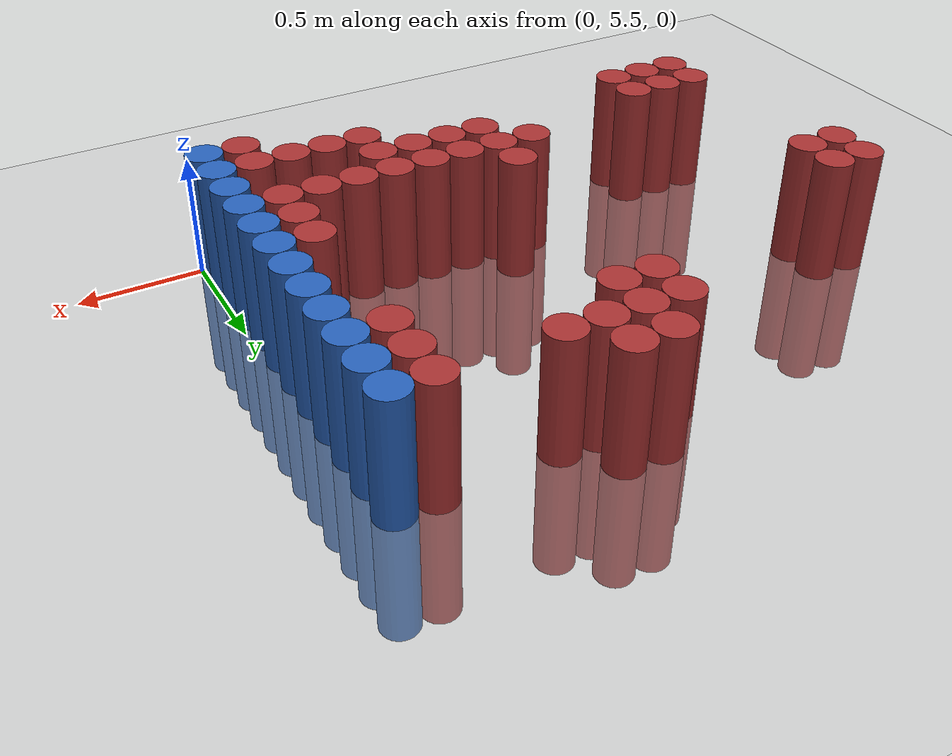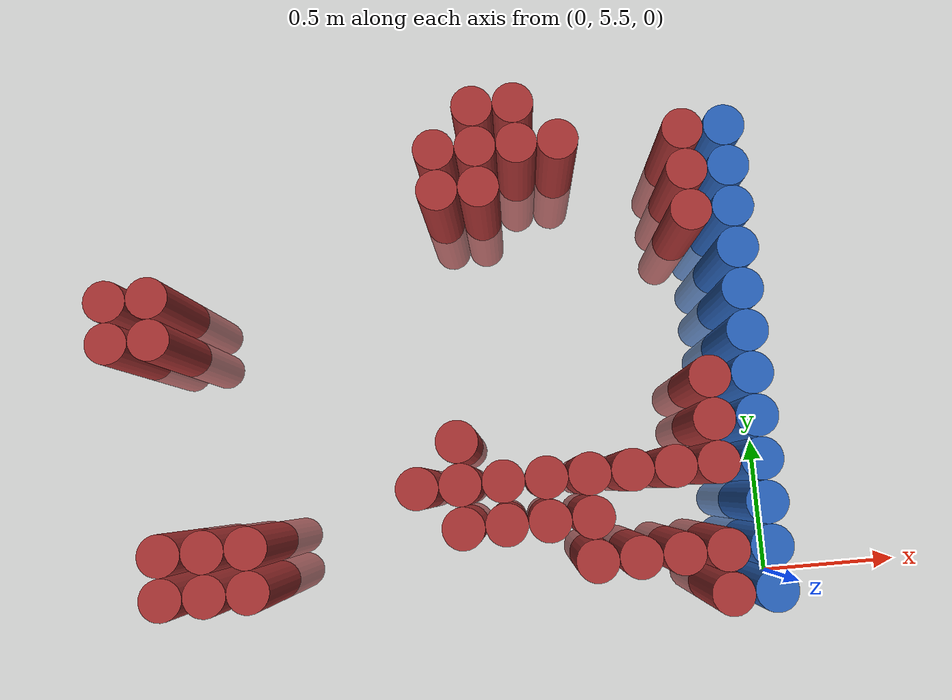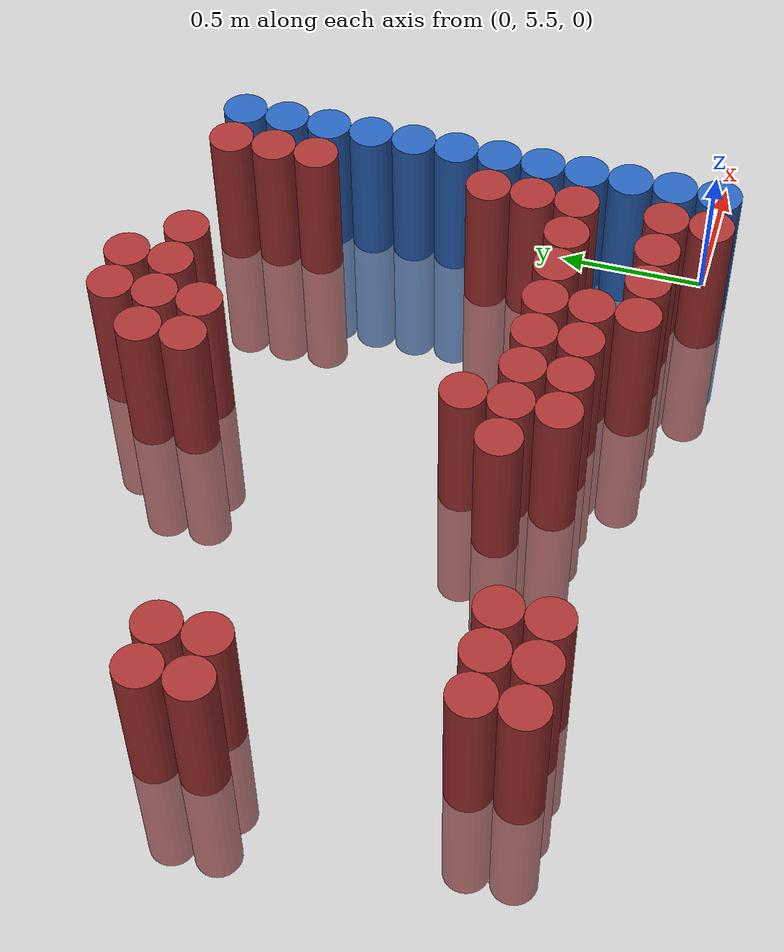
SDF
<sdf version="1.6">
 <world name="world_247">
  <model name="ground_plane">
   <static>1</static>
   <link name="link">
    <collision name="collision">
     <geometry><plane><normal>0 0 1</normal><size>100 100</size></plane></geometry>
     <surface><friction><ode><mu>100</mu><mu2>50</mu2></ode></friction></surface>
    </collision>
    <visual name="visual">
     <cast_shadows>0</cast_shadows>
     <geometry><plane><normal>0 0 1</normal><size>100 100</size></plane></geometry>
     <material>
      <script><uri>file://media/materials/scripts/gazebo.material</uri><name>Gazebo/Grey</name></script>
     </material>
    </visual>
   </link>
  </model>
  <model name="unit_cylinder_158">
   <static>1</static>
   <pose>-2.325000 6.525000 0.000000 0.000000 0.000000 0.000000</pose>
   <link name="link">
    <inertial>
     <mass>1</mass>
     <inertia><ixx>0.145833</ixx><ixy>0</ixy><ixz>0</ixz><iyy>0.145833</iyy><iyz>0</iyz><izz>0.125</izz></inertia>
    </inertial>
    <collision name="collision">
     <geometry><cylinder><radius>0.075000</radius><length>1</length></cylinder></geometry>
    </collision>
    <visual name="visual">
     <geometry><cylinder><radius>0.075000</radius><length>1</length></cylinder></geometry>
     <material>
      <ambient>0.648000 0.192000 0.192000 1</ambient>
      <diffuse>0.648000 0.192000 0.192000 1</diffuse>
     </material>
     <material>
      <script><name>Gazebo/Grey</name><uri>file://media/materials/scripts/gazebo.material</uri></script>
     </material>
    </visual>
   </link>
  </model>
  <model name="unit_cylinder_159">
   <static>1</static>
   <pose>-2.325000 6.675000 0.000000 0.000000 0.000000 0.000000</pose>
   <link name="link">
    <inertial>
     <mass>1</mass>
     <inertia><ixx>0.145833</ixx><ixy>0</ixy><ixz>0</ixz><iyy>0.145833</iyy><iyz>0</iyz><izz>0.125</izz></inertia>
    </inertial>
    <collision name="collision">
     <geometry><cylinder><radius>0.075000</radius><length>1</length></cylinder></geometry>
    </collision>
    <visual name="visual">
     <geometry><cylinder><radius>0.075000</radius><length>1</length></cylinder></geometry>
     <material>
      <ambient>0.648000 0.192000 0.192000 1</ambient>
      <diffuse>0.648000 0.192000 0.192000 1</diffuse>
     </material>
     <material>
      <script><name>Gazebo/Grey</name><uri>file://media/materials/scripts/gazebo.material</uri></script>
     </material>
    </visual>
   </link>
  </model>
  <model name="unit_cylinder_162">
   <static>1</static>
   <pose>-2.175000 5.625000 0.000000 0.000000 0.000000 0.000000</pose>
   <link name="link">
    <inertial>
     <mass>1</mass>
     <inertia><ixx>0.145833</ixx><ixy>0</ixy><ixz>0</ixz><iyy>0.145833</iyy><iyz>0</iyz><izz>0.125</izz></inertia>
    </inertial>
    <collision name="collision">
     <geometry><cylinder><radius>0.075000</radius><length>1</length></cylinder></geometry>
    </collision>
    <visual name="visual">
     <geometry><cylinder><radius>0.075000</radius><length>1</length></cylinder></geometry>
     <material>
      <ambient>0.648000 0.192000 0.192000 1</ambient>
      <diffuse>0.648000 0.192000 0.192000 1</diffuse>
     </material>
     <material>
      <script><name>Gazebo/Grey</name><uri>file://media/materials/scripts/gazebo.material</uri></script>
     </material>
    </visual>
   </link>
  </model>
  <model name="unit_cylinder_163">
   <static>1</static>
   <pose>-2.175000 5.775000 0.000000 0.000000 0.000000 0.000000</pose>
   <link name="link">
    <inertial>
     <mass>1</mass>
     <inertia><ixx>0.145833</ixx><ixy>0</ixy><ixz>0</ixz><iyy>0.145833</iyy><iyz>0</iyz><izz>0.125</izz></inertia>
    </inertial>
    <collision name="collision">
     <geometry><cylinder><radius>0.075000</radius><length>1</length></cylinder></geometry>
    </collision>
    <visual name="visual">
     <geometry><cylinder><radius>0.075000</radius><length>1</length></cylinder></geometry>
     <material>
      <ambient>0.648000 0.192000 0.192000 1</ambient>
      <diffuse>0.648000 0.192000 0.192000 1</diffuse>
     </material>
     <material>
      <script><name>Gazebo/Grey</name><uri>file://media/materials/scripts/gazebo.material</uri></script>
     </material>
    </visual>
   </link>
  </model>
  <model name="unit_cylinder_164">
   <static>1</static>
   <pose>-2.175000 6.525000 0.000000 0.000000 0.000000 0.000000</pose>
   <link name="link">
    <inertial>
     <mass>1</mass>
     <inertia><ixx>0.145833</ixx><ixy>0</ixy><ixz>0</ixz><iyy>0.145833</iyy><iyz>0</iyz><izz>0.125</izz></inertia>
    </inertial>
    <collision name="collision">
     <geometry><cylinder><radius>0.075000</radius><length>1</length></cylinder></geometry>
    </collision>
    <visual name="visual">
     <geometry><cylinder><radius>0.075000</radius><length>1</length></cylinder></geometry>
     <material>
      <ambient>0.648000 0.192000 0.192000 1</ambient>
      <diffuse>0.648000 0.192000 0.192000 1</diffuse>
     </material>
     <material>
      <script><name>Gazebo/Grey</name><uri>file://media/materials/scripts/gazebo.material</uri></script>
     </material>
    </visual>
   </link>
  </model>
  <model name="unit_cylinder_165">
   <static>1</static>
   <pose>-2.175000 6.675000 0.000000 0.000000 0.000000 0.000000</pose>
   <link name="link">
    <inertial>
     <mass>1</mass>
     <inertia><ixx>0.145833</ixx><ixy>0</ixy><ixz>0</ixz><iyy>0.145833</iyy><iyz>0</iyz><izz>0.125</izz></inertia>
    </inertial>
    <collision name="collision">
     <geometry><cylinder><radius>0.075000</radius><length>1</length></cylinder></geometry>
    </collision>
    <visual name="visual">
     <geometry><cylinder><radius>0.075000</radius><length>1</length></cylinder></geometry>
     <material>
      <ambient>0.648000 0.192000 0.192000 1</ambient>
      <diffuse>0.648000 0.192000 0.192000 1</diffuse>
     </material>
     <material>
      <script><name>Gazebo/Grey</name><uri>file://media/materials/scripts/gazebo.material</uri></script>
     </material>
    </visual>
   </link>
  </model>
  <model name="unit_cylinder_169">
   <static>1</static>
   <pose>-2.025000 5.625000 0.000000 0.000000 0.000000 0.000000</pose>
   <link name="link">
    <inertial>
     <mass>1</mass>
     <inertia><ixx>0.145833</ixx><ixy>0</ixy><ixz>0</ixz><iyy>0.145833</iyy><iyz>0</iyz><izz>0.125</izz></inertia>
    </inertial>
    <collision name="collision">
     <geometry><cylinder><radius>0.075000</radius><length>1</length></cylinder></geometry>
    </collision>
    <visual name="visual">
     <geometry><cylinder><radius>0.075000</radius><length>1</length></cylinder></geometry>
     <material>
      <ambient>0.648000 0.192000 0.192000 1</ambient>
      <diffuse>0.648000 0.192000 0.192000 1</diffuse>
     </material>
     <material>
      <script><name>Gazebo/Grey</name><uri>file://media/materials/scripts/gazebo.material</uri></script>
     </material>
    </visual>
   </link>
  </model>
  <model name="unit_cylinder_170">
   <static>1</static>
   <pose>-2.025000 5.775000 0.000000 0.000000 0.000000 0.000000</pose>
   <link name="link">
    <inertial>
     <mass>1</mass>
     <inertia><ixx>0.145833</ixx><ixy>0</ixy><ixz>0</ixz><iyy>0.145833</iyy><iyz>0</iyz><izz>0.125</izz></inertia>
    </inertial>
    <collision name="collision">
     <geometry><cylinder><radius>0.075000</radius><length>1</length></cylinder></geometry>
    </collision>
    <visual name="visual">
     <geometry><cylinder><radius>0.075000</radius><length>1</length></cylinder></geometry>
     <material>
      <ambient>0.648000 0.192000 0.192000 1</ambient>
      <diffuse>0.648000 0.192000 0.192000 1</diffuse>
     </material>
     <material>
      <script><name>Gazebo/Grey</name><uri>file://media/materials/scripts/gazebo.material</uri></script>
     </material>
    </visual>
   </link>
  </model>
  <model name="unit_cylinder_171">
   <static>1</static>
   <pose>-1.875000 5.625000 0.000000 0.000000 0.000000 0.000000</pose>
   <link name="link">
    <inertial>
     <mass>1</mass>
     <inertia><ixx>0.145833</ixx><ixy>0</ixy><ixz>0</ixz><iyy>0.145833</iyy><iyz>0</iyz><izz>0.125</izz></inertia>
    </inertial>
    <collision name="collision">
     <geometry><cylinder><radius>0.075000</radius><length>1</length></cylinder></geometry>
    </collision>
    <visual name="visual">
     <geometry><cylinder><radius>0.075000</radius><length>1</length></cylinder></geometry>
     <material>
      <ambient>0.648000 0.192000 0.192000 1</ambient>
      <diffuse>0.648000 0.192000 0.192000 1</diffuse>
     </material>
     <material>
      <script><name>Gazebo/Grey</name><uri>file://media/materials/scripts/gazebo.material</uri></script>
     </material>
    </visual>
   </link>
  </model>
  <model name="unit_cylinder_172">
   <static>1</static>
   <pose>-1.875000 5.775000 0.000000 0.000000 0.000000 0.000000</pose>
   <link name="link">
    <inertial>
     <mass>1</mass>
     <inertia><ixx>0.145833</ixx><ixy>0</ixy><ixz>0</ixz><iyy>0.145833</iyy><iyz>0</iyz><izz>0.125</izz></inertia>
    </inertial>
    <collision name="collision">
     <geometry><cylinder><radius>0.075000</radius><length>1</length></cylinder></geometry>
    </collision>
    <visual name="visual">
     <geometry><cylinder><radius>0.075000</radius><length>1</length></cylinder></geometry>
     <material>
      <ambient>0.648000 0.192000 0.192000 1</ambient>
      <diffuse>0.648000 0.192000 0.192000 1</diffuse>
     </material>
     <material>
      <script><name>Gazebo/Grey</name><uri>file://media/materials/scripts/gazebo.material</uri></script>
     </material>
    </visual>
   </link>
  </model>
  <model name="unit_cylinder_176">
   <static>1</static>
   <pose>-1.275000 5.925000 0.000000 0.000000 0.000000 0.000000</pose>
   <link name="link">
    <inertial>
     <mass>1</mass>
     <inertia><ixx>0.145833</ixx><ixy>0</ixy><ixz>0</ixz><iyy>0.145833</iyy><iyz>0</iyz><izz>0.125</izz></inertia>
    </inertial>
    <collision name="collision">
     <geometry><cylinder><radius>0.075000</radius><length>1</length></cylinder></geometry>
    </collision>
    <visual name="visual">
     <geometry><cylinder><radius>0.075000</radius><length>1</length></cylinder></geometry>
     <material>
      <ambient>0.648000 0.192000 0.192000 1</ambient>
      <diffuse>0.648000 0.192000 0.192000 1</diffuse>
     </material>
     <material>
      <script><name>Gazebo/Grey</name><uri>file://media/materials/scripts/gazebo.material</uri></script>
     </material>
    </visual>
   </link>
  </model>
  <model name="unit_cylinder_182">
   <static>1</static>
   <pose>-1.125000 5.775000 0.000000 0.000000 0.000000 0.000000</pose>
   <link name="link">
    <inertial>
     <mass>1</mass>
     <inertia><ixx>0.145833</ixx><ixy>0</ixy><ixz>0</ixz><iyy>0.145833</iyy><iyz>0</iyz><izz>0.125</izz></inertia>
    </inertial>
    <collision name="collision">
     <geometry><cylinder><radius>0.075000</radius><length>1</length></cylinder></geometry>
    </collision>
    <visual name="visual">
     <geometry><cylinder><radius>0.075000</radius><length>1</length></cylinder></geometry>
     <material>
      <ambient>0.648000 0.192000 0.192000 1</ambient>
      <diffuse>0.648000 0.192000 0.192000 1</diffuse>
     </material>
     <material>
      <script><name>Gazebo/Grey</name><uri>file://media/materials/scripts/gazebo.material</uri></script>
     </material>
    </visual>
   </link>
  </model>
  <model name="unit_cylinder_183">
   <static>1</static>
   <pose>-1.125000 5.925000 0.000000 0.000000 0.000000 0.000000</pose>
   <link name="link">
    <inertial>
     <mass>1</mass>
     <inertia><ixx>0.145833</ixx><ixy>0</ixy><ixz>0</ixz><iyy>0.145833</iyy><iyz>0</iyz><izz>0.125</izz></inertia>
    </inertial>
    <collision name="collision">
     <geometry><cylinder><radius>0.075000</radius><length>1</length></cylinder></geometry>
    </collision>
    <visual name="visual">
     <geometry><cylinder><radius>0.075000</radius><length>1</length></cylinder></geometry>
     <material>
      <ambient>0.648000 0.192000 0.192000 1</ambient>
      <diffuse>0.648000 0.192000 0.192000 1</diffuse>
     </material>
     <material>
      <script><name>Gazebo/Grey</name><uri>file://media/materials/scripts/gazebo.material</uri></script>
     </material>
    </visual>
   </link>
  </model>
  <model name="unit_cylinder_184">
   <static>1</static>
   <pose>-1.125000 6.075000 0.000000 0.000000 0.000000 0.000000</pose>
   <link name="link">
    <inertial>
     <mass>1</mass>
     <inertia><ixx>0.145833</ixx><ixy>0</ixy><ixz>0</ixz><iyy>0.145833</iyy><iyz>0</iyz><izz>0.125</izz></inertia>
    </inertial>
    <collision name="collision">
     <geometry><cylinder><radius>0.075000</radius><length>1</length></cylinder></geometry>
    </collision>
    <visual name="visual">
     <geometry><cylinder><radius>0.075000</radius><length>1</length></cylinder></geometry>
     <material>
      <ambient>0.648000 0.192000 0.192000 1</ambient>
      <diffuse>0.648000 0.192000 0.192000 1</diffuse>
     </material>
     <material>
      <script><name>Gazebo/Grey</name><uri>file://media/materials/scripts/gazebo.material</uri></script>
     </material>
    </visual>
   </link>
  </model>
  <model name="unit_cylinder_185">
   <static>1</static>
   <pose>-1.125000 6.975000 0.000000 0.000000 0.000000 0.000000</pose>
   <link name="link">
    <inertial>
     <mass>1</mass>
     <inertia><ixx>0.145833</ixx><ixy>0</ixy><ixz>0</ixz><iyy>0.145833</iyy><iyz>0</iyz><izz>0.125</izz></inertia>
    </inertial>
    <collision name="collision">
     <geometry><cylinder><radius>0.075000</radius><length>1</length></cylinder></geometry>
    </collision>
    <visual name="visual">
     <geometry><cylinder><radius>0.075000</radius><length>1</length></cylinder></geometry>
     <material>
      <ambient>0.648000 0.192000 0.192000 1</ambient>
      <diffuse>0.648000 0.192000 0.192000 1</diffuse>
     </material>
     <material>
      <script><name>Gazebo/Grey</name><uri>file://media/materials/scripts/gazebo.material</uri></script>
     </material>
    </visual>
   </link>
  </model>
  <model name="unit_cylinder_186">
   <static>1</static>
   <pose>-1.125000 7.125000 0.000000 0.000000 0.000000 0.000000</pose>
   <link name="link">
    <inertial>
     <mass>1</mass>
     <inertia><ixx>0.145833</ixx><ixy>0</ixy><ixz>0</ixz><iyy>0.145833</iyy><iyz>0</iyz><izz>0.125</izz></inertia>
    </inertial>
    <collision name="collision">
     <geometry><cylinder><radius>0.075000</radius><length>1</length></cylinder></geometry>
    </collision>
    <visual name="visual">
     <geometry><cylinder><radius>0.075000</radius><length>1</length></cylinder></geometry>
     <material>
      <ambient>0.648000 0.192000 0.192000 1</ambient>
      <diffuse>0.648000 0.192000 0.192000 1</diffuse>
     </material>
     <material>
      <script><name>Gazebo/Grey</name><uri>file://media/materials/scripts/gazebo.material</uri></script>
     </material>
    </visual>
   </link>
  </model>
  <model name="unit_cylinder_191">
   <static>1</static>
   <pose>-0.975000 5.775000 0.000000 0.000000 0.000000 0.000000</pose>
   <link name="link">
    <inertial>
     <mass>1</mass>
     <inertia><ixx>0.145833</ixx><ixy>0</ixy><ixz>0</ixz><iyy>0.145833</iyy><iyz>0</iyz><izz>0.125</izz></inertia>
    </inertial>
    <collision name="collision">
     <geometry><cylinder><radius>0.075000</radius><length>1</length></cylinder></geometry>
    </collision>
    <visual name="visual">
     <geometry><cylinder><radius>0.075000</radius><length>1</length></cylinder></geometry>
     <material>
      <ambient>0.648000 0.192000 0.192000 1</ambient>
      <diffuse>0.648000 0.192000 0.192000 1</diffuse>
     </material>
     <material>
      <script><name>Gazebo/Grey</name><uri>file://media/materials/scripts/gazebo.material</uri></script>
     </material>
    </visual>
   </link>
  </model>
  <model name="unit_cylinder_192">
   <static>1</static>
   <pose>-0.975000 5.925000 0.000000 0.000000 0.000000 0.000000</pose>
   <link name="link">
    <inertial>
     <mass>1</mass>
     <inertia><ixx>0.145833</ixx><ixy>0</ixy><ixz>0</ixz><iyy>0.145833</iyy><iyz>0</iyz><izz>0.125</izz></inertia>
    </inertial>
    <collision name="collision">
     <geometry><cylinder><radius>0.075000</radius><length>1</length></cylinder></geometry>
    </collision>
    <visual name="visual">
     <geometry><cylinder><radius>0.075000</radius><length>1</length></cylinder></geometry>
     <material>
      <ambient>0.648000 0.192000 0.192000 1</ambient>
      <diffuse>0.648000 0.192000 0.192000 1</diffuse>
     </material>
     <material>
      <script><name>Gazebo/Grey</name><uri>file://media/materials/scripts/gazebo.material</uri></script>
     </material>
    </visual>
   </link>
  </model>
  <model name="unit_cylinder_193">
   <static>1</static>
   <pose>-0.975000 6.975000 0.000000 0.000000 0.000000 0.000000</pose>
   <link name="link">
    <inertial>
     <mass>1</mass>
     <inertia><ixx>0.145833</ixx><ixy>0</ixy><ixz>0</ixz><iyy>0.145833</iyy><iyz>0</iyz><izz>0.125</izz></inertia>
    </inertial>
    <collision name="collision">
     <geometry><cylinder><radius>0.075000</radius><length>1</length></cylinder></geometry>
    </collision>
    <visual name="visual">
     <geometry><cylinder><radius>0.075000</radius><length>1</length></cylinder></geometry>
     <material>
      <ambient>0.648000 0.192000 0.192000 1</ambient>
      <diffuse>0.648000 0.192000 0.192000 1</diffuse>
     </material>
     <material>
      <script><name>Gazebo/Grey</name><uri>file://media/materials/scripts/gazebo.material</uri></script>
     </material>
    </visual>
   </link>
  </model>
  <model name="unit_cylinder_194">
   <static>1</static>
   <pose>-0.975000 7.125000 0.000000 0.000000 0.000000 0.000000</pose>
   <link name="link">
    <inertial>
     <mass>1</mass>
     <inertia><ixx>0.145833</ixx><ixy>0</ixy><ixz>0</ixz><iyy>0.145833</iyy><iyz>0</iyz><izz>0.125</izz></inertia>
    </inertial>
    <collision name="collision">
     <geometry><cylinder><radius>0.075000</radius><length>1</length></cylinder></geometry>
    </collision>
    <visual name="visual">
     <geometry><cylinder><radius>0.075000</radius><length>1</length></cylinder></geometry>
     <material>
      <ambient>0.648000 0.192000 0.192000 1</ambient>
      <diffuse>0.648000 0.192000 0.192000 1</diffuse>
     </material>
     <material>
      <script><name>Gazebo/Grey</name><uri>file://media/materials/scripts/gazebo.material</uri></script>
     </material>
    </visual>
   </link>
  </model>
  <model name="unit_cylinder_195">
   <static>1</static>
   <pose>-0.975000 7.275000 0.000000 0.000000 0.000000 0.000000</pose>
   <link name="link">
    <inertial>
     <mass>1</mass>
     <inertia><ixx>0.145833</ixx><ixy>0</ixy><ixz>0</ixz><iyy>0.145833</iyy><iyz>0</iyz><izz>0.125</izz></inertia>
    </inertial>
    <collision name="collision">
     <geometry><cylinder><radius>0.075000</radius><length>1</length></cylinder></geometry>
    </collision>
    <visual name="visual">
     <geometry><cylinder><radius>0.075000</radius><length>1</length></cylinder></geometry>
     <material>
      <ambient>0.648000 0.192000 0.192000 1</ambient>
      <diffuse>0.648000 0.192000 0.192000 1</diffuse>
     </material>
     <material>
      <script><name>Gazebo/Grey</name><uri>file://media/materials/scripts/gazebo.material</uri></script>
     </material>
    </visual>
   </link>
  </model>
  <model name="unit_cylinder_200">
   <static>1</static>
   <pose>-0.825000 5.775000 0.000000 0.000000 0.000000 0.000000</pose>
   <link name="link">
    <inertial>
     <mass>1</mass>
     <inertia><ixx>0.145833</ixx><ixy>0</ixy><ixz>0</ixz><iyy>0.145833</iyy><iyz>0</iyz><izz>0.125</izz></inertia>
    </inertial>
    <collision name="collision">
     <geometry><cylinder><radius>0.075000</radius><length>1</length></cylinder></geometry>
    </collision>
    <visual name="visual">
     <geometry><cylinder><radius>0.075000</radius><length>1</length></cylinder></geometry>
     <material>
      <ambient>0.648000 0.192000 0.192000 1</ambient>
      <diffuse>0.648000 0.192000 0.192000 1</diffuse>
     </material>
     <material>
      <script><name>Gazebo/Grey</name><uri>file://media/materials/scripts/gazebo.material</uri></script>
     </material>
    </visual>
   </link>
  </model>
  <model name="unit_cylinder_201">
   <static>1</static>
   <pose>-0.825000 5.925000 0.000000 0.000000 0.000000 0.000000</pose>
   <link name="link">
    <inertial>
     <mass>1</mass>
     <inertia><ixx>0.145833</ixx><ixy>0</ixy><ixz>0</ixz><iyy>0.145833</iyy><iyz>0</iyz><izz>0.125</izz></inertia>
    </inertial>
    <collision name="collision">
     <geometry><cylinder><radius>0.075000</radius><length>1</length></cylinder></geometry>
    </collision>
    <visual name="visual">
     <geometry><cylinder><radius>0.075000</radius><length>1</length></cylinder></geometry>
     <material>
      <ambient>0.648000 0.192000 0.192000 1</ambient>
      <diffuse>0.648000 0.192000 0.192000 1</diffuse>
     </material>
     <material>
      <script><name>Gazebo/Grey</name><uri>file://media/materials/scripts/gazebo.material</uri></script>
     </material>
    </visual>
   </link>
  </model>
  <model name="unit_cylinder_202">
   <static>1</static>
   <pose>-0.825000 7.125000 0.000000 0.000000 0.000000 0.000000</pose>
   <link name="link">
    <inertial>
     <mass>1</mass>
     <inertia><ixx>0.145833</ixx><ixy>0</ixy><ixz>0</ixz><iyy>0.145833</iyy><iyz>0</iyz><izz>0.125</izz></inertia>
    </inertial>
    <collision name="collision">
     <geometry><cylinder><radius>0.075000</radius><length>1</length></cylinder></geometry>
    </collision>
    <visual name="visual">
     <geometry><cylinder><radius>0.075000</radius><length>1</length></cylinder></geometry>
     <material>
      <ambient>0.648000 0.192000 0.192000 1</ambient>
      <diffuse>0.648000 0.192000 0.192000 1</diffuse>
     </material>
     <material>
      <script><name>Gazebo/Grey</name><uri>file://media/materials/scripts/gazebo.material</uri></script>
     </material>
    </visual>
   </link>
  </model>
  <model name="unit_cylinder_203">
   <static>1</static>
   <pose>-0.825000 7.275000 0.000000 0.000000 0.000000 0.000000</pose>
   <link name="link">
    <inertial>
     <mass>1</mass>
     <inertia><ixx>0.145833</ixx><ixy>0</ixy><ixz>0</ixz><iyy>0.145833</iyy><iyz>0</iyz><izz>0.125</izz></inertia>
    </inertial>
    <collision name="collision">
     <geometry><cylinder><radius>0.075000</radius><length>1</length></cylinder></geometry>
    </collision>
    <visual name="visual">
     <geometry><cylinder><radius>0.075000</radius><length>1</length></cylinder></geometry>
     <material>
      <ambient>0.648000 0.192000 0.192000 1</ambient>
      <diffuse>0.648000 0.192000 0.192000 1</diffuse>
     </material>
     <material>
      <script><name>Gazebo/Grey</name><uri>file://media/materials/scripts/gazebo.material</uri></script>
     </material>
    </visual>
   </link>
  </model>
  <model name="unit_cylinder_205">
   <static>1</static>
   <pose>-0.675000 5.625000 0.000000 0.000000 0.000000 0.000000</pose>
   <link name="link">
    <inertial>
     <mass>1</mass>
     <inertia><ixx>0.145833</ixx><ixy>0</ixy><ixz>0</ixz><iyy>0.145833</iyy><iyz>0</iyz><izz>0.125</izz></inertia>
    </inertial>
    <collision name="collision">
     <geometry><cylinder><radius>0.075000</radius><length>1</length></cylinder></geometry>
    </collision>
    <visual name="visual">
     <geometry><cylinder><radius>0.075000</radius><length>1</length></cylinder></geometry>
     <material>
      <ambient>0.648000 0.192000 0.192000 1</ambient>
      <diffuse>0.648000 0.192000 0.192000 1</diffuse>
     </material>
     <material>
      <script><name>Gazebo/Grey</name><uri>file://media/materials/scripts/gazebo.material</uri></script>
     </material>
    </visual>
   </link>
  </model>
  <model name="unit_cylinder_206">
   <static>1</static>
   <pose>-0.675000 5.775000 0.000000 0.000000 0.000000 0.000000</pose>
   <link name="link">
    <inertial>
     <mass>1</mass>
     <inertia><ixx>0.145833</ixx><ixy>0</ixy><ixz>0</ixz><iyy>0.145833</iyy><iyz>0</iyz><izz>0.125</izz></inertia>
    </inertial>
    <collision name="collision">
     <geometry><cylinder><radius>0.075000</radius><length>1</length></cylinder></geometry>
    </collision>
    <visual name="visual">
     <geometry><cylinder><radius>0.075000</radius><length>1</length></cylinder></geometry>
     <material>
      <ambient>0.648000 0.192000 0.192000 1</ambient>
      <diffuse>0.648000 0.192000 0.192000 1</diffuse>
     </material>
     <material>
      <script><name>Gazebo/Grey</name><uri>file://media/materials/scripts/gazebo.material</uri></script>
     </material>
    </visual>
   </link>
  </model>
  <model name="unit_cylinder_207">
   <static>1</static>
   <pose>-0.675000 5.925000 0.000000 0.000000 0.000000 0.000000</pose>
   <link name="link">
    <inertial>
     <mass>1</mass>
     <inertia><ixx>0.145833</ixx><ixy>0</ixy><ixz>0</ixz><iyy>0.145833</iyy><iyz>0</iyz><izz>0.125</izz></inertia>
    </inertial>
    <collision name="collision">
     <geometry><cylinder><radius>0.075000</radius><length>1</length></cylinder></geometry>
    </collision>
    <visual name="visual">
     <geometry><cylinder><radius>0.075000</radius><length>1</length></cylinder></geometry>
     <material>
      <ambient>0.648000 0.192000 0.192000 1</ambient>
      <diffuse>0.648000 0.192000 0.192000 1</diffuse>
     </material>
     <material>
      <script><name>Gazebo/Grey</name><uri>file://media/materials/scripts/gazebo.material</uri></script>
     </material>
    </visual>
   </link>
  </model>
  <model name="unit_cylinder_208">
   <static>1</static>
   <pose>-0.675000 7.125000 0.000000 0.000000 0.000000 0.000000</pose>
   <link name="link">
    <inertial>
     <mass>1</mass>
     <inertia><ixx>0.145833</ixx><ixy>0</ixy><ixz>0</ixz><iyy>0.145833</iyy><iyz>0</iyz><izz>0.125</izz></inertia>
    </inertial>
    <collision name="collision">
     <geometry><cylinder><radius>0.075000</radius><length>1</length></cylinder></geometry>
    </collision>
    <visual name="visual">
     <geometry><cylinder><radius>0.075000</radius><length>1</length></cylinder></geometry>
     <material>
      <ambient>0.648000 0.192000 0.192000 1</ambient>
      <diffuse>0.648000 0.192000 0.192000 1</diffuse>
     </material>
     <material>
      <script><name>Gazebo/Grey</name><uri>file://media/materials/scripts/gazebo.material</uri></script>
     </material>
    </visual>
   </link>
  </model>
  <model name="unit_cylinder_212">
   <static>1</static>
   <pose>-0.525000 5.625000 0.000000 0.000000 0.000000 0.000000</pose>
   <link name="link">
    <inertial>
     <mass>1</mass>
     <inertia><ixx>0.145833</ixx><ixy>0</ixy><ixz>0</ixz><iyy>0.145833</iyy><iyz>0</iyz><izz>0.125</izz></inertia>
    </inertial>
    <collision name="collision">
     <geometry><cylinder><radius>0.075000</radius><length>1</length></cylinder></geometry>
    </collision>
    <visual name="visual">
     <geometry><cylinder><radius>0.075000</radius><length>1</length></cylinder></geometry>
     <material>
      <ambient>0.648000 0.192000 0.192000 1</ambient>
      <diffuse>0.648000 0.192000 0.192000 1</diffuse>
     </material>
     <material>
      <script><name>Gazebo/Grey</name><uri>file://media/materials/scripts/gazebo.material</uri></script>
     </material>
    </visual>
   </link>
  </model>
  <model name="unit_cylinder_213">
   <static>1</static>
   <pose>-0.525000 5.925000 0.000000 0.000000 0.000000 0.000000</pose>
   <link name="link">
    <inertial>
     <mass>1</mass>
     <inertia><ixx>0.145833</ixx><ixy>0</ixy><ixz>0</ixz><iyy>0.145833</iyy><iyz>0</iyz><izz>0.125</izz></inertia>
    </inertial>
    <collision name="collision">
     <geometry><cylinder><radius>0.075000</radius><length>1</length></cylinder></geometry>
    </collision>
    <visual name="visual">
     <geometry><cylinder><radius>0.075000</radius><length>1</length></cylinder></geometry>
     <material>
      <ambient>0.648000 0.192000 0.192000 1</ambient>
      <diffuse>0.648000 0.192000 0.192000 1</diffuse>
     </material>
     <material>
      <script><name>Gazebo/Grey</name><uri>file://media/materials/scripts/gazebo.material</uri></script>
     </material>
    </visual>
   </link>
  </model>
  <model name="unit_cylinder_218">
   <static>1</static>
   <pose>-0.375000 5.625000 0.000000 0.000000 0.000000 0.000000</pose>
   <link name="link">
    <inertial>
     <mass>1</mass>
     <inertia><ixx>0.145833</ixx><ixy>0</ixy><ixz>0</ixz><iyy>0.145833</iyy><iyz>0</iyz><izz>0.125</izz></inertia>
    </inertial>
    <collision name="collision">
     <geometry><cylinder><radius>0.075000</radius><length>1</length></cylinder></geometry>
    </collision>
    <visual name="visual">
     <geometry><cylinder><radius>0.075000</radius><length>1</length></cylinder></geometry>
     <material>
      <ambient>0.648000 0.192000 0.192000 1</ambient>
      <diffuse>0.648000 0.192000 0.192000 1</diffuse>
     </material>
     <material>
      <script><name>Gazebo/Grey</name><uri>file://media/materials/scripts/gazebo.material</uri></script>
     </material>
    </visual>
   </link>
  </model>
  <model name="unit_cylinder_219">
   <static>1</static>
   <pose>-0.375000 5.925000 0.000000 0.000000 0.000000 0.000000</pose>
   <link name="link">
    <inertial>
     <mass>1</mass>
     <inertia><ixx>0.145833</ixx><ixy>0</ixy><ixz>0</ixz><iyy>0.145833</iyy><iyz>0</iyz><izz>0.125</izz></inertia>
    </inertial>
    <collision name="collision">
     <geometry><cylinder><radius>0.075000</radius><length>1</length></cylinder></geometry>
    </collision>
    <visual name="visual">
     <geometry><cylinder><radius>0.075000</radius><length>1</length></cylinder></geometry>
     <material>
      <ambient>0.648000 0.192000 0.192000 1</ambient>
      <diffuse>0.648000 0.192000 0.192000 1</diffuse>
     </material>
     <material>
      <script><name>Gazebo/Grey</name><uri>file://media/materials/scripts/gazebo.material</uri></script>
     </material>
    </visual>
   </link>
  </model>
  <model name="unit_cylinder_225">
   <static>1</static>
   <pose>-0.225000 5.475000 0.000000 0.000000 0.000000 0.000000</pose>
   <link name="link">
    <inertial>
     <mass>1</mass>
     <inertia><ixx>0.145833</ixx><ixy>0</ixy><ixz>0</ixz><iyy>0.145833</iyy><iyz>0</iyz><izz>0.125</izz></inertia>
    </inertial>
    <collision name="collision">
     <geometry><cylinder><radius>0.075000</radius><length>1</length></cylinder></geometry>
    </collision>
    <visual name="visual">
     <geometry><cylinder><radius>0.075000</radius><length>1</length></cylinder></geometry>
     <material>
      <ambient>0.648000 0.192000 0.192000 1</ambient>
      <diffuse>0.648000 0.192000 0.192000 1</diffuse>
     </material>
     <material>
      <script><name>Gazebo/Grey</name><uri>file://media/materials/scripts/gazebo.material</uri></script>
     </material>
    </visual>
   </link>
  </model>
  <model name="unit_cylinder_226">
   <static>1</static>
   <pose>-0.225000 5.625000 0.000000 0.000000 0.000000 0.000000</pose>
   <link name="link">
    <inertial>
     <mass>1</mass>
     <inertia><ixx>0.145833</ixx><ixy>0</ixy><ixz>0</ixz><iyy>0.145833</iyy><iyz>0</iyz><izz>0.125</izz></inertia>
    </inertial>
    <collision name="collision">
     <geometry><cylinder><radius>0.075000</radius><length>1</length></cylinder></geometry>
    </collision>
    <visual name="visual">
     <geometry><cylinder><radius>0.075000</radius><length>1</length></cylinder></geometry>
     <material>
      <ambient>0.648000 0.192000 0.192000 1</ambient>
      <diffuse>0.648000 0.192000 0.192000 1</diffuse>
     </material>
     <material>
      <script><name>Gazebo/Grey</name><uri>file://media/materials/scripts/gazebo.material</uri></script>
     </material>
    </visual>
   </link>
  </model>
  <model name="unit_cylinder_227">
   <static>1</static>
   <pose>-0.225000 5.925000 0.000000 0.000000 0.000000 0.000000</pose>
   <link name="link">
    <inertial>
     <mass>1</mass>
     <inertia><ixx>0.145833</ixx><ixy>0</ixy><ixz>0</ixz><iyy>0.145833</iyy><iyz>0</iyz><izz>0.125</izz></inertia>
    </inertial>
    <collision name="collision">
     <geometry><cylinder><radius>0.075000</radius><length>1</length></cylinder></geometry>
    </collision>
    <visual name="visual">
     <geometry><cylinder><radius>0.075000</radius><length>1</length></cylinder></geometry>
     <material>
      <ambient>0.648000 0.192000 0.192000 1</ambient>
      <diffuse>0.648000 0.192000 0.192000 1</diffuse>
     </material>
     <material>
      <script><name>Gazebo/Grey</name><uri>file://media/materials/scripts/gazebo.material</uri></script>
     </material>
    </visual>
   </link>
  </model>
  <model name="unit_cylinder_228">
   <static>1</static>
   <pose>-0.225000 6.075000 0.000000 0.000000 0.000000 0.000000</pose>
   <link name="link">
    <inertial>
     <mass>1</mass>
     <inertia><ixx>0.145833</ixx><ixy>0</ixy><ixz>0</ixz><iyy>0.145833</iyy><iyz>0</iyz><izz>0.125</izz></inertia>
    </inertial>
    <collision name="collision">
     <geometry><cylinder><radius>0.075000</radius><length>1</length></cylinder></geometry>
    </collision>
    <visual name="visual">
     <geometry><cylinder><radius>0.075000</radius><length>1</length></cylinder></geometry>
     <material>
      <ambient>0.648000 0.192000 0.192000 1</ambient>
      <diffuse>0.648000 0.192000 0.192000 1</diffuse>
     </material>
     <material>
      <script><name>Gazebo/Grey</name><uri>file://media/materials/scripts/gazebo.material</uri></script>
     </material>
    </visual>
   </link>
  </model>
  <model name="unit_cylinder_229">
   <static>1</static>
   <pose>-0.225000 6.225000 0.000000 0.000000 0.000000 0.000000</pose>
   <link name="link">
    <inertial>
     <mass>1</mass>
     <inertia><ixx>0.145833</ixx><ixy>0</ixy><ixz>0</ixz><iyy>0.145833</iyy><iyz>0</iyz><izz>0.125</izz></inertia>
    </inertial>
    <collision name="collision">
     <geometry><cylinder><radius>0.075000</radius><length>1</length></cylinder></geometry>
    </collision>
    <visual name="visual">
     <geometry><cylinder><radius>0.075000</radius><length>1</length></cylinder></geometry>
     <material>
      <ambient>0.648000 0.192000 0.192000 1</ambient>
      <diffuse>0.648000 0.192000 0.192000 1</diffuse>
     </material>
     <material>
      <script><name>Gazebo/Grey</name><uri>file://media/materials/scripts/gazebo.material</uri></script>
     </material>
    </visual>
   </link>
  </model>
  <model name="unit_cylinder_230">
   <static>1</static>
   <pose>-0.225000 6.825000 0.000000 0.000000 0.000000 0.000000</pose>
   <link name="link">
    <inertial>
     <mass>1</mass>
     <inertia><ixx>0.145833</ixx><ixy>0</ixy><ixz>0</ixz><iyy>0.145833</iyy><iyz>0</iyz><izz>0.125</izz></inertia>
    </inertial>
    <collision name="collision">
     <geometry><cylinder><radius>0.075000</radius><length>1</length></cylinder></geometry>
    </collision>
    <visual name="visual">
     <geometry><cylinder><radius>0.075000</radius><length>1</length></cylinder></geometry>
     <material>
      <ambient>0.648000 0.192000 0.192000 1</ambient>
      <diffuse>0.648000 0.192000 0.192000 1</diffuse>
     </material>
     <material>
      <script><name>Gazebo/Grey</name><uri>file://media/materials/scripts/gazebo.material</uri></script>
     </material>
    </visual>
   </link>
  </model>
  <model name="unit_cylinder_231">
   <static>1</static>
   <pose>-0.225000 6.975000 0.000000 0.000000 0.000000 0.000000</pose>
   <link name="link">
    <inertial>
     <mass>1</mass>
     <inertia><ixx>0.145833</ixx><ixy>0</ixy><ixz>0</ixz><iyy>0.145833</iyy><iyz>0</iyz><izz>0.125</izz></inertia>
    </inertial>
    <collision name="collision">
     <geometry><cylinder><radius>0.075000</radius><length>1</length></cylinder></geometry>
    </collision>
    <visual name="visual">
     <geometry><cylinder><radius>0.075000</radius><length>1</length></cylinder></geometry>
     <material>
      <ambient>0.648000 0.192000 0.192000 1</ambient>
      <diffuse>0.648000 0.192000 0.192000 1</diffuse>
     </material>
     <material>
      <script><name>Gazebo/Grey</name><uri>file://media/materials/scripts/gazebo.material</uri></script>
     </material>
    </visual>
   </link>
  </model>
  <model name="unit_cylinder_232">
   <static>1</static>
   <pose>-0.225000 7.125000 0.000000 0.000000 0.000000 0.000000</pose>
   <link name="link">
    <inertial>
     <mass>1</mass>
     <inertia><ixx>0.145833</ixx><ixy>0</ixy><ixz>0</ixz><iyy>0.145833</iyy><iyz>0</iyz><izz>0.125</izz></inertia>
    </inertial>
    <collision name="collision">
     <geometry><cylinder><radius>0.075000</radius><length>1</length></cylinder></geometry>
    </collision>
    <visual name="visual">
     <geometry><cylinder><radius>0.075000</radius><length>1</length></cylinder></geometry>
     <material>
      <ambient>0.648000 0.192000 0.192000 1</ambient>
      <diffuse>0.648000 0.192000 0.192000 1</diffuse>
     </material>
     <material>
      <script><name>Gazebo/Grey</name><uri>file://media/materials/scripts/gazebo.material</uri></script>
     </material>
    </visual>
   </link>
  </model>
  <model name="unit_cylinder_240">
   <static>1</static>
   <pose>-0.075000 5.475000 0.000000 0.000000 0.000000 0.000000</pose>
   <link name="link">
    <inertial>
     <mass>1</mass>
     <inertia><ixx>0.145833</ixx><ixy>0</ixy><ixz>0</ixz><iyy>0.145833</iyy><iyz>0</iyz><izz>0.125</izz></inertia>
    </inertial>
    <collision name="collision">
     <geometry><cylinder><radius>0.075000</radius><length>1</length></cylinder></geometry>
    </collision>
    <visual name="visual">
     <geometry><cylinder><radius>0.075000</radius><length>1</length></cylinder></geometry>
     <material>
      <ambient>0.152000 0.379000 0.720000 1</ambient>
      <diffuse>0.152000 0.379000 0.720000 1</diffuse>
     </material>
     <material>
      <script><name>Gazebo/Grey</name><uri>file://media/materials/scripts/gazebo.material</uri></script>
     </material>
    </visual>
   </link>
  </model>
  <model name="unit_cylinder_241">
   <static>1</static>
   <pose>-0.075000 5.625000 0.000000 0.000000 0.000000 0.000000</pose>
   <link name="link">
    <inertial>
     <mass>1</mass>
     <inertia><ixx>0.145833</ixx><ixy>0</ixy><ixz>0</ixz><iyy>0.145833</iyy><iyz>0</iyz><izz>0.125</izz></inertia>
    </inertial>
    <collision name="collision">
     <geometry><cylinder><radius>0.075000</radius><length>1</length></cylinder></geometry>
    </collision>
    <visual name="visual">
     <geometry><cylinder><radius>0.075000</radius><length>1</length></cylinder></geometry>
     <material>
      <ambient>0.152000 0.379000 0.720000 1</ambient>
      <diffuse>0.152000 0.379000 0.720000 1</diffuse>
     </material>
     <material>
      <script><name>Gazebo/Grey</name><uri>file://media/materials/scripts/gazebo.material</uri></script>
     </material>
    </visual>
   </link>
  </model>
  <model name="unit_cylinder_242">
   <static>1</static>
   <pose>-0.075000 5.775000 0.000000 0.000000 0.000000 0.000000</pose>
   <link name="link">
    <inertial>
     <mass>1</mass>
     <inertia><ixx>0.145833</ixx><ixy>0</ixy><ixz>0</ixz><iyy>0.145833</iyy><iyz>0</iyz><izz>0.125</izz></inertia>
    </inertial>
    <collision name="collision">
     <geometry><cylinder><radius>0.075000</radius><length>1</length></cylinder></geometry>
    </collision>
    <visual name="visual">
     <geometry><cylinder><radius>0.075000</radius><length>1</length></cylinder></geometry>
     <material>
      <ambient>0.152000 0.379000 0.720000 1</ambient>
      <diffuse>0.152000 0.379000 0.720000 1</diffuse>
     </material>
     <material>
      <script><name>Gazebo/Grey</name><uri>file://media/materials/scripts/gazebo.material</uri></script>
     </material>
    </visual>
   </link>
  </model>
  <model name="unit_cylinder_243">
   <static>1</static>
   <pose>-0.075000 5.925000 0.000000 0.000000 0.000000 0.000000</pose>
   <link name="link">
    <inertial>
     <mass>1</mass>
     <inertia><ixx>0.145833</ixx><ixy>0</ixy><ixz>0</ixz><iyy>0.145833</iyy><iyz>0</iyz><izz>0.125</izz></inertia>
    </inertial>
    <collision name="collision">
     <geometry><cylinder><radius>0.075000</radius><length>1</length></cylinder></geometry>
    </collision>
    <visual name="visual">
     <geometry><cylinder><radius>0.075000</radius><length>1</length></cylinder></geometry>
     <material>
      <ambient>0.152000 0.379000 0.720000 1</ambient>
      <diffuse>0.152000 0.379000 0.720000 1</diffuse>
     </material>
     <material>
      <script><name>Gazebo/Grey</name><uri>file://media/materials/scripts/gazebo.material</uri></script>
     </material>
    </visual>
   </link>
  </model>
  <model name="unit_cylinder_244">
   <static>1</static>
   <pose>-0.075000 6.075000 0.000000 0.000000 0.000000 0.000000</pose>
   <link name="link">
    <inertial>
     <mass>1</mass>
     <inertia><ixx>0.145833</ixx><ixy>0</ixy><ixz>0</ixz><iyy>0.145833</iyy><iyz>0</iyz><izz>0.125</izz></inertia>
    </inertial>
    <collision name="collision">
     <geometry><cylinder><radius>0.075000</radius><length>1</length></cylinder></geometry>
    </collision>
    <visual name="visual">
     <geometry><cylinder><radius>0.075000</radius><length>1</length></cylinder></geometry>
     <material>
      <ambient>0.152000 0.379000 0.720000 1</ambient>
      <diffuse>0.152000 0.379000 0.720000 1</diffuse>
     </material>
     <material>
      <script><name>Gazebo/Grey</name><uri>file://media/materials/scripts/gazebo.material</uri></script>
     </material>
    </visual>
   </link>
  </model>
  <model name="unit_cylinder_245">
   <static>1</static>
   <pose>-0.075000 6.225000 0.000000 0.000000 0.000000 0.000000</pose>
   <link name="link">
    <inertial>
     <mass>1</mass>
     <inertia><ixx>0.145833</ixx><ixy>0</ixy><ixz>0</ixz><iyy>0.145833</iyy><iyz>0</iyz><izz>0.125</izz></inertia>
    </inertial>
    <collision name="collision">
     <geometry><cylinder><radius>0.075000</radius><length>1</length></cylinder></geometry>
    </collision>
    <visual name="visual">
     <geometry><cylinder><radius>0.075000</radius><length>1</length></cylinder></geometry>
     <material>
      <ambient>0.152000 0.379000 0.720000 1</ambient>
      <diffuse>0.152000 0.379000 0.720000 1</diffuse>
     </material>
     <material>
      <script><name>Gazebo/Grey</name><uri>file://media/materials/scripts/gazebo.material</uri></script>
     </material>
    </visual>
   </link>
  </model>
  <model name="unit_cylinder_246">
   <static>1</static>
   <pose>-0.075000 6.375000 0.000000 0.000000 0.000000 0.000000</pose>
   <link name="link">
    <inertial>
     <mass>1</mass>
     <inertia><ixx>0.145833</ixx><ixy>0</ixy><ixz>0</ixz><iyy>0.145833</iyy><iyz>0</iyz><izz>0.125</izz></inertia>
    </inertial>
    <collision name="collision">
     <geometry><cylinder><radius>0.075000</radius><length>1</length></cylinder></geometry>
    </collision>
    <visual name="visual">
     <geometry><cylinder><radius>0.075000</radius><length>1</length></cylinder></geometry>
     <material>
      <ambient>0.152000 0.379000 0.720000 1</ambient>
      <diffuse>0.152000 0.379000 0.720000 1</diffuse>
     </material>
     <material>
      <script><name>Gazebo/Grey</name><uri>file://media/materials/scripts/gazebo.material</uri></script>
     </material>
    </visual>
   </link>
  </model>
  <model name="unit_cylinder_247">
   <static>1</static>
   <pose>-0.075000 6.525000 0.000000 0.000000 0.000000 0.000000</pose>
   <link name="link">
    <inertial>
     <mass>1</mass>
     <inertia><ixx>0.145833</ixx><ixy>0</ixy><ixz>0</ixz><iyy>0.145833</iyy><iyz>0</iyz><izz>0.125</izz></inertia>
    </inertial>
    <collision name="collision">
     <geometry><cylinder><radius>0.075000</radius><length>1</length></cylinder></geometry>
    </collision>
    <visual name="visual">
     <geometry><cylinder><radius>0.075000</radius><length>1</length></cylinder></geometry>
     <material>
      <ambient>0.152000 0.379000 0.720000 1</ambient>
      <diffuse>0.152000 0.379000 0.720000 1</diffuse>
     </material>
     <material>
      <script><name>Gazebo/Grey</name><uri>file://media/materials/scripts/gazebo.material</uri></script>
     </material>
    </visual>
   </link>
  </model>
  <model name="unit_cylinder_248">
   <static>1</static>
   <pose>-0.075000 6.675000 0.000000 0.000000 0.000000 0.000000</pose>
   <link name="link">
    <inertial>
     <mass>1</mass>
     <inertia><ixx>0.145833</ixx><ixy>0</ixy><ixz>0</ixz><iyy>0.145833</iyy><iyz>0</iyz><izz>0.125</izz></inertia>
    </inertial>
    <collision name="collision">
     <geometry><cylinder><radius>0.075000</radius><length>1</length></cylinder></geometry>
    </collision>
    <visual name="visual">
     <geometry><cylinder><radius>0.075000</radius><length>1</length></cylinder></geometry>
     <material>
      <ambient>0.152000 0.379000 0.720000 1</ambient>
      <diffuse>0.152000 0.379000 0.720000 1</diffuse>
     </material>
     <material>
      <script><name>Gazebo/Grey</name><uri>file://media/materials/scripts/gazebo.material</uri></script>
     </material>
    </visual>
   </link>
  </model>
  <model name="unit_cylinder_249">
   <static>1</static>
   <pose>-0.075000 6.825000 0.000000 0.000000 0.000000 0.000000</pose>
   <link name="link">
    <inertial>
     <mass>1</mass>
     <inertia><ixx>0.145833</ixx><ixy>0</ixy><ixz>0</ixz><iyy>0.145833</iyy><iyz>0</iyz><izz>0.125</izz></inertia>
    </inertial>
    <collision name="collision">
     <geometry><cylinder><radius>0.075000</radius><length>1</length></cylinder></geometry>
    </collision>
    <visual name="visual">
     <geometry><cylinder><radius>0.075000</radius><length>1</length></cylinder></geometry>
     <material>
      <ambient>0.152000 0.379000 0.720000 1</ambient>
      <diffuse>0.152000 0.379000 0.720000 1</diffuse>
     </material>
     <material>
      <script><name>Gazebo/Grey</name><uri>file://media/materials/scripts/gazebo.material</uri></script>
     </material>
    </visual>
   </link>
  </model>
  <model name="unit_cylinder_250">
   <static>1</static>
   <pose>-0.075000 6.975000 0.000000 0.000000 0.000000 0.000000</pose>
   <link name="link">
    <inertial>
     <mass>1</mass>
     <inertia><ixx>0.145833</ixx><ixy>0</ixy><ixz>0</ixz><iyy>0.145833</iyy><iyz>0</iyz><izz>0.125</izz></inertia>
    </inertial>
    <collision name="collision">
     <geometry><cylinder><radius>0.075000</radius><length>1</length></cylinder></geometry>
    </collision>
    <visual name="visual">
     <geometry><cylinder><radius>0.075000</radius><length>1</length></cylinder></geometry>
     <material>
      <ambient>0.152000 0.379000 0.720000 1</ambient>
      <diffuse>0.152000 0.379000 0.720000 1</diffuse>
     </material>
     <material>
      <script><name>Gazebo/Grey</name><uri>file://media/materials/scripts/gazebo.material</uri></script>
     </material>
    </visual>
   </link>
  </model>
  <model name="unit_cylinder_251">
   <static>1</static>
   <pose>-0.075000 7.125000 0.000000 0.000000 0.000000 0.000000</pose>
   <link name="link">
    <inertial>
     <mass>1</mass>
     <inertia><ixx>0.145833</ixx><ixy>0</ixy><ixz>0</ixz><iyy>0.145833</iyy><iyz>0</iyz><izz>0.125</izz></inertia>
    </inertial>
    <collision name="collision">
     <geometry><cylinder><radius>0.075000</radius><length>1</length></cylinder></geometry>
    </collision>
    <visual name="visual">
     <geometry><cylinder><radius>0.075000</radius><length>1</length></cylinder></geometry>
     <material>
      <ambient>0.152000 0.379000 0.720000 1</ambient>
      <diffuse>0.152000 0.379000 0.720000 1</diffuse>
     </material>
     <material>
      <script><name>Gazebo/Grey</name><uri>file://media/materials/scripts/gazebo.material</uri></script>
     </material>
    </visual>
   </link>
  </model>
 </world>
</sdf>
